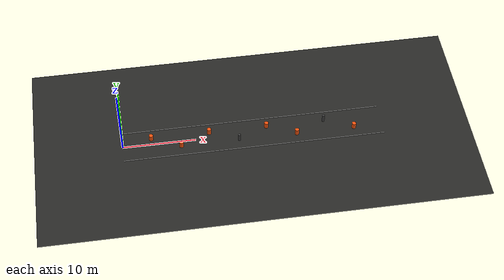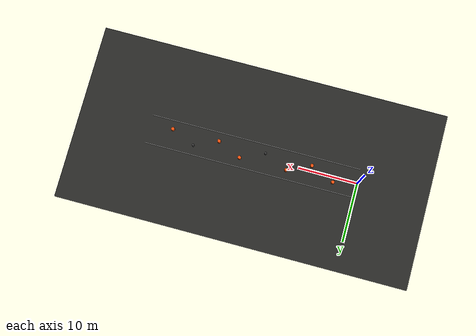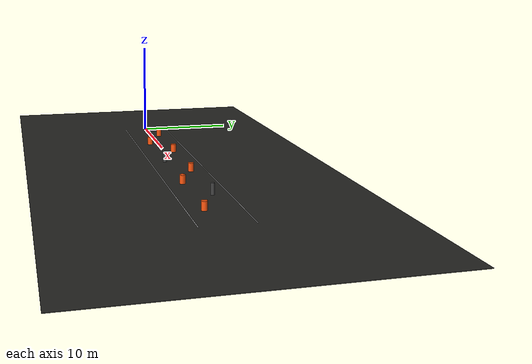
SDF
<sdf version="1.9">
 <world name="igvc_competition">
  <plugin filename="ignition-gazebo-physics-system" name="ignition::gazebo::systems::Physics"/>
  <plugin filename="ignition-gazebo-user-commands-system" name="ignition::gazebo::systems::UserCommands"/>
  <plugin filename="ignition-gazebo-scene-broadcaster-system" name="ignition::gazebo::systems::SceneBroadcaster"/>
  <plugin filename="ignition-gazebo-sensors-system" name="ignition::gazebo::systems::Sensors">
   <render_engine>ogre2</render_engine>
  </plugin>
  <light name="sun" type="directional">
   <pose>0 0 20 0 0 0</pose>
   <diffuse>0.8 0.8 0.75 1</diffuse>
   <specular>0.2 0.2 0.2 1</specular>
   <direction>-0.35 0.15 -0.92</direction>
  </light>
  <gravity>0 0 -9.80665</gravity>
  <magnetic_field>6e-06 2.3e-05 -4.2e-05</magnetic_field>
  <atmosphere type="adiabatic"/>
  <physics name="default_physics" type="ode">
   <max_step_size>0.010</max_step_size>
   <real_time_factor>1.0</real_time_factor>
   <real_time_update_rate>100</real_time_update_rate>
  </physics>
  <scene>
   <ambient>0.45 0.45 0.45 1</ambient>
   <background>0.70 0.72 0.75 1</background>
   <shadows>true</shadows>
  </scene>
  <spherical_coordinates>
   <surface_model>EARTH_WGS84</surface_model>
   <latitude_deg>37.23027000</latitude_deg>
   <longitude_deg>-80.42504000</longitude_deg>
   <elevation>650.000</elevation>
   <heading_deg>0</heading_deg>
  </spherical_coordinates>
  <model name="asphalt_ground">
   <static>1</static>
   <pose>18.0000 0.0000 -0.0250 0.000000 0.000000 0.000000</pose>
   <link name="link">
    <collision name="collision"><geometry><box><size>60.0000 30.0000 0.0500</size></box></geometry></collision>
    <visual name="visual">
     <geometry><box><size>60.0000 30.0000 0.0500</size></box></geometry>
     <material>
      <ambient>0.16 0.16 0.15 1.0</ambient>
      <diffuse>0.16 0.16 0.15 1.0</diffuse>
      <specular>0.05 0.05 0.05 1</specular>
     </material>
    </visual>
   </link>
  </model>
  <model name="left_boundary_0">
   <static>1</static>
   <pose>4.5000 2.4384 0.011 0 0 0.000000</pose>
   <link name="link">
    <visual name="visual">
     <geometry><box><size>9.0000 0.0762 0.012</size></box></geometry>
     <material>
      <ambient>0.98 0.98 0.98 1</ambient>
      <diffuse>0.98 0.98 0.98 1</diffuse>
      <specular>0.05 0.05 0.05 1</specular>
      <emissive>0.9 0.9 0.9 1</emissive>
     </material>
    </visual>
   </link>
  </model>
  <model name="right_boundary_0">
   <static>1</static>
   <pose>4.5000 -2.4384 0.011 0 0 0.000000</pose>
   <link name="link">
    <visual name="visual">
     <geometry><box><size>9.0000 0.0762 0.012</size></box></geometry>
     <material>
      <ambient>0.98 0.98 0.98 1</ambient>
      <diffuse>0.98 0.98 0.98 1</diffuse>
      <specular>0.05 0.05 0.05 1</specular>
      <emissive>0.9 0.9 0.9 1</emissive>
     </material>
    </visual>
   </link>
  </model>
  <model name="left_boundary_1">
   <static>1</static>
   <pose>13.5000 2.4384 0.011 0 0 0.000000</pose>
   <link name="link">
    <visual name="visual">
     <geometry><box><size>9.0000 0.0762 0.012</size></box></geometry>
     <material>
      <ambient>0.98 0.98 0.98 1</ambient>
      <diffuse>0.98 0.98 0.98 1</diffuse>
      <specular>0.05 0.05 0.05 1</specular>
      <emissive>0.9 0.9 0.9 1</emissive>
     </material>
    </visual>
   </link>
  </model>
  <model name="right_boundary_1">
   <static>1</static>
   <pose>13.5000 -2.4384 0.011 0 0 0.000000</pose>
   <link name="link">
    <visual name="visual">
     <geometry><box><size>9.0000 0.0762 0.012</size></box></geometry>
     <material>
      <ambient>0.98 0.98 0.98 1</ambient>
      <diffuse>0.98 0.98 0.98 1</diffuse>
      <specular>0.05 0.05 0.05 1</specular>
      <emissive>0.9 0.9 0.9 1</emissive>
     </material>
    </visual>
   </link>
  </model>
  <model name="left_boundary_2">
   <static>1</static>
   <pose>22.5000 2.4384 0.011 0 0 0.000000</pose>
   <link name="link">
    <visual name="visual">
     <geometry><box><size>9.0000 0.0762 0.012</size></box></geometry>
     <material>
      <ambient>0.98 0.98 0.98 1</ambient>
      <diffuse>0.98 0.98 0.98 1</diffuse>
      <specular>0.05 0.05 0.05 1</specular>
      <emissive>0.9 0.9 0.9 1</emissive>
     </material>
    </visual>
   </link>
  </model>
  <model name="right_boundary_2">
   <static>1</static>
   <pose>22.5000 -2.4384 0.011 0 0 0.000000</pose>
   <link name="link">
    <visual name="visual">
     <geometry><box><size>9.0000 0.0762 0.012</size></box></geometry>
     <material>
      <ambient>0.98 0.98 0.98 1</ambient>
      <diffuse>0.98 0.98 0.98 1</diffuse>
      <specular>0.05 0.05 0.05 1</specular>
      <emissive>0.9 0.9 0.9 1</emissive>
     </material>
    </visual>
   </link>
  </model>
  <model name="left_boundary_3">
   <static>1</static>
   <pose>31.5000 2.4384 0.011 0 0 0.000000</pose>
   <link name="link">
    <visual name="visual">
     <geometry><box><size>9.0000 0.0762 0.012</size></box></geometry>
     <material>
      <ambient>0.98 0.98 0.98 1</ambient>
      <diffuse>0.98 0.98 0.98 1</diffuse>
      <specular>0.05 0.05 0.05 1</specular>
      <emissive>0.9 0.9 0.9 1</emissive>
     </material>
    </visual>
   </link>
  </model>
  <model name="right_boundary_3">
   <static>1</static>
   <pose>31.5000 -2.4384 0.011 0 0 0.000000</pose>
   <link name="link">
    <visual name="visual">
     <geometry><box><size>9.0000 0.0762 0.012</size></box></geometry>
     <material>
      <ambient>0.98 0.98 0.98 1</ambient>
      <diffuse>0.98 0.98 0.98 1</diffuse>
      <specular>0.05 0.05 0.05 1</specular>
      <emissive>0.9 0.9 0.9 1</emissive>
     </material>
    </visual>
   </link>
  </model>
  <model name="slalom_0">
   <static>1</static>
   <pose>4.0000 0.9000 0 0 0 0</pose>
   <link name="link">
    <collision name="collision">
     <pose>0 0 0.4250 0 0 0</pose>
     <geometry><cylinder><radius>0.2800</radius><length>0.8500</length></cylinder></geometry>
    </collision>
    <visual name="visual">
     <pose>0 0 0.4250 0 0 0</pose>
     <geometry><cylinder><radius>0.2800</radius><length>0.8500</length></cylinder></geometry>
     <material>
      <ambient>0.95 0.32 0.05 1.0</ambient>
      <diffuse>0.95 0.32 0.05 1.0</diffuse>
      <specular>0.05 0.05 0.05 1</specular>
     </material>
    </visual>
   </link>
  </model>
  <model name="slalom_1">
   <static>1</static>
   <pose>8.0000 -0.9000 0 0 0 0</pose>
   <link name="link">
    <collision name="collision">
     <pose>0 0 0.4250 0 0 0</pose>
     <geometry><cylinder><radius>0.2800</radius><length>0.8500</length></cylinder></geometry>
    </collision>
    <visual name="visual">
     <pose>0 0 0.4250 0 0 0</pose>
     <geometry><cylinder><radius>0.2800</radius><length>0.8500</length></cylinder></geometry>
     <material>
      <ambient>0.95 0.32 0.05 1.0</ambient>
      <diffuse>0.95 0.32 0.05 1.0</diffuse>
      <specular>0.05 0.05 0.05 1</specular>
     </material>
    </visual>
   </link>
  </model>
  <model name="slalom_2">
   <static>1</static>
   <pose>12.0000 0.9000 0 0 0 0</pose>
   <link name="link">
    <collision name="collision">
     <pose>0 0 0.4250 0 0 0</pose>
     <geometry><cylinder><radius>0.2800</radius><length>0.8500</length></cylinder></geometry>
    </collision>
    <visual name="visual">
     <pose>0 0 0.4250 0 0 0</pose>
     <geometry><cylinder><radius>0.2800</radius><length>0.8500</length></cylinder></geometry>
     <material>
      <ambient>0.95 0.32 0.05 1.0</ambient>
      <diffuse>0.95 0.32 0.05 1.0</diffuse>
      <specular>0.05 0.05 0.05 1</specular>
     </material>
    </visual>
   </link>
  </model>
  <model name="slalom_3">
   <static>1</static>
   <pose>16.0000 -0.9000 0 0 0 0</pose>
   <link name="link">
    <collision name="collision">
     <pose>0 0 0.5500 0 0 0</pose>
     <geometry><cylinder><radius>0.1800</radius><length>1.1000</length></cylinder></geometry>
    </collision>
    <visual name="visual">
     <pose>0 0 0.5500 0 0 0</pose>
     <geometry><cylinder><radius>0.1800</radius><length>1.1000</length></cylinder></geometry>
     <material>
      <ambient>0.25 0.25 0.25 1.0</ambient>
      <diffuse>0.25 0.25 0.25 1.0</diffuse>
      <specular>0.05 0.05 0.05 1</specular>
     </material>
    </visual>
   </link>
  </model>
  <model name="slalom_4">
   <static>1</static>
   <pose>20.0000 0.9000 0 0 0 0</pose>
   <link name="link">
    <collision name="collision">
     <pose>0 0 0.4250 0 0 0</pose>
     <geometry><cylinder><radius>0.2800</radius><length>0.8500</length></cylinder></geometry>
    </collision>
    <visual name="visual">
     <pose>0 0 0.4250 0 0 0</pose>
     <geometry><cylinder><radius>0.2800</radius><length>0.8500</length></cylinder></geometry>
     <material>
      <ambient>0.95 0.32 0.05 1.0</ambient>
      <diffuse>0.95 0.32 0.05 1.0</diffuse>
      <specular>0.05 0.05 0.05 1</specular>
     </material>
    </visual>
   </link>
  </model>
  <model name="slalom_5">
   <static>1</static>
   <pose>24.0000 -0.9000 0 0 0 0</pose>
   <link name="link">
    <collision name="collision">
     <pose>0 0 0.4250 0 0 0</pose>
     <geometry><cylinder><radius>0.2800</radius><length>0.8500</length></cylinder></geometry>
    </collision>
    <visual name="visual">
     <pose>0 0 0.4250 0 0 0</pose>
     <geometry><cylinder><radius>0.2800</radius><length>0.8500</length></cylinder></geometry>
     <material>
      <ambient>0.95 0.32 0.05 1.0</ambient>
      <diffuse>0.95 0.32 0.05 1.0</diffuse>
      <specular>0.05 0.05 0.05 1</specular>
     </material>
    </visual>
   </link>
  </model>
  <model name="slalom_6">
   <static>1</static>
   <pose>28.0000 0.9000 0 0 0 0</pose>
   <link name="link">
    <collision name="collision">
     <pose>0 0 0.5500 0 0 0</pose>
     <geometry><cylinder><radius>0.1800</radius><length>1.1000</length></cylinder></geometry>
    </collision>
    <visual name="visual">
     <pose>0 0 0.5500 0 0 0</pose>
     <geometry><cylinder><radius>0.1800</radius><length>1.1000</length></cylinder></geometry>
     <material>
      <ambient>0.25 0.25 0.25 1.0</ambient>
      <diffuse>0.25 0.25 0.25 1.0</diffuse>
      <specular>0.05 0.05 0.05 1</specular>
     </material>
    </visual>
   </link>
  </model>
  <model name="slalom_7">
   <static>1</static>
   <pose>32.0000 -0.9000 0 0 0 0</pose>
   <link name="link">
    <collision name="collision">
     <pose>0 0 0.4250 0 0 0</pose>
     <geometry><cylinder><radius>0.2800</radius><length>0.8500</length></cylinder></geometry>
    </collision>
    <visual name="visual">
     <pose>0 0 0.4250 0 0 0</pose>
     <geometry><cylinder><radius>0.2800</radius><length>0.8500</length></cylinder></geometry>
     <material>
      <ambient>0.95 0.32 0.05 1.0</ambient>
      <diffuse>0.95 0.32 0.05 1.0</diffuse>
      <specular>0.05 0.05 0.05 1</specular>
     </material>
    </visual>
   </link>
  </model>
 </world>
</sdf>
